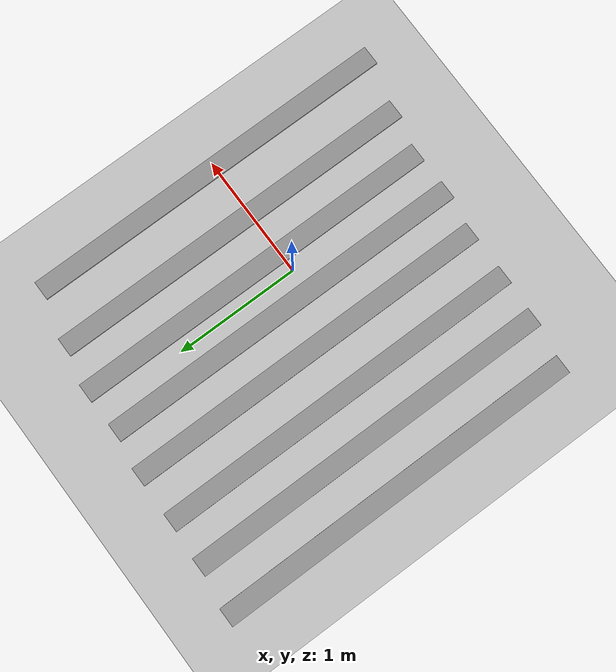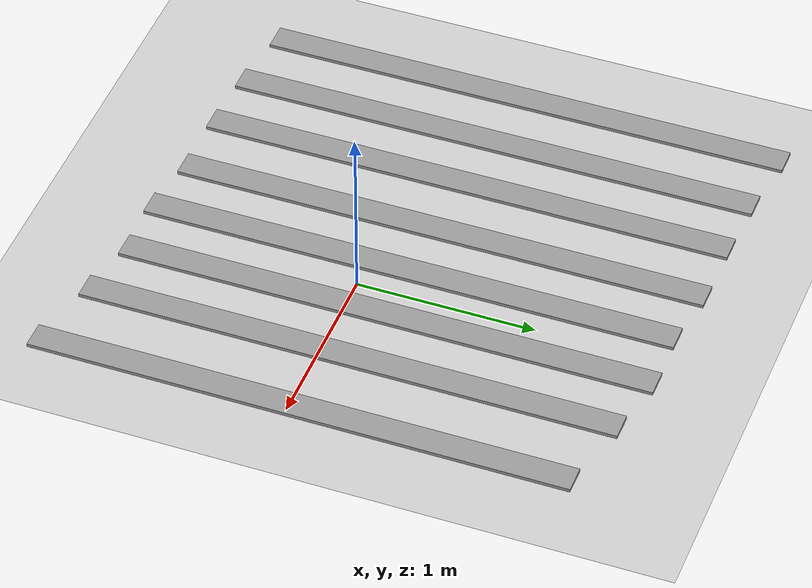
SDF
<sdf version="1.6">
 <world name="default">
  <light name="sun" type="directional">
   <pose>0 0 10 0 -0 0</pose>
   <diffuse>0.8 0.8 0.8 1</diffuse>
   <specular>0.2 0.2 0.2 1</specular>
   <attenuation>
    <range>1000</range>
    <constant>0.9</constant>
    <linear>0.01</linear>
    <quadratic>0.001</quadratic>
   </attenuation>
   <direction>-0.5 0.1 -0.9</direction>
  </light>
  <model name="ground_plane">
   <static>1</static>
   <link name="link">
    <collision name="collision">
     <geometry><plane><normal>0 0 1</normal><size>100 100</size></plane></geometry>
     <surface><friction><ode><mu>100</mu><mu2>50</mu2></ode></friction></surface>
    </collision>
    <visual name="visual">
     <cast_shadows>0</cast_shadows>
     <geometry><plane><normal>0 0 1</normal><size>100 100</size></plane></geometry>
     <material>
      <script><uri>file://media/materials/scripts/gazebo.material</uri><name>Gazebo/Grey</name></script>
     </material>
    </visual>
   </link>
  </model>
  <gravity>0 0 -9.8</gravity>
  <magnetic_field>6e-06 2.3e-05 -4.2e-05</magnetic_field>
  <atmosphere type="adiabatic"/>
  <physics name="default_physics" default="0" type="ode">
   <max_step_size>0.001</max_step_size>
   <real_time_factor>1</real_time_factor>
   <real_time_update_rate>1000</real_time_update_rate>
  </physics>
  <scene><ambient>0.4 0.4 0.4 1</ambient><background>0.7 0.7 0.7 1</background><shadows>1</shadows></scene>
  <audio><device>default</device></audio>
  <spherical_coordinates>
   <surface_model>EARTH_WGS84</surface_model>
   <latitude_deg>0</latitude_deg>
   <longitude_deg>0</longitude_deg>
   <elevation>0</elevation>
   <heading_deg>0</heading_deg>
  </spherical_coordinates>
  <model name="unit_box">
   <pose>-1.70044 0.345286 0.009892 0 6e-06 0</pose>
   <link name="link">
    <inertial>
     <mass>1</mass>
     <inertia>
      <ixx>0.166667</ixx>
      <ixy>0</ixy>
      <ixz>0</ixz>
      <iyy>0.166667</iyy>
      <iyz>0</iyz>
      <izz>0.166667</izz>
     </inertia>
    </inertial>
    <collision name="collision">
     <geometry><box><size>0.154508 2.98369 0.0197854</size></box></geometry>
    </collision>
    <visual name="visual">
     <geometry><box><size>0.154508 2.98369 0.0197854</size></box></geometry>
     <material>
      <script><name>Gazebo/Grey</name><uri>file://media/materials/scripts/gazebo.material</uri></script>
     </material>
    </visual>
   </link>
  </model>
  <model name="unit_box_clone">
   <pose>-1.30824 0.296436 0.009893 0 -4e-06 0</pose>
   <link name="link">
    <inertial>
     <mass>1</mass>
     <inertia>
      <ixx>0.166667</ixx>
      <ixy>0</ixy>
      <ixz>0</ixz>
      <iyy>0.166667</iyy>
      <iyz>0</iyz>
      <izz>0.166667</izz>
     </inertia>
    </inertial>
    <collision name="collision"><geometry><box><size>0.154508 2.98369 0.019785</size></box></geometry></collision>
    <visual name="visual">
     <geometry><box><size>0.154508 2.98369 0.019785</size></box></geometry>
     <material>
      <script><name>Gazebo/Grey</name><uri>file://media/materials/scripts/gazebo.material</uri></script>
     </material>
    </visual>
   </link>
  </model>
  <model name="unit_box_clone_0">
   <pose>-0.937732 0.277378 0.009893 0 -4e-06 0</pose>
   <link name="link">
    <inertial>
     <mass>1</mass>
     <inertia>
      <ixx>0.166667</ixx>
      <ixy>0</ixy>
      <ixz>0</ixz>
      <iyy>0.166667</iyy>
      <iyz>0</iyz>
      <izz>0.166667</izz>
     </inertia>
    </inertial>
    <collision name="collision"><geometry><box><size>0.154508 2.98369 0.019785</size></box></geometry></collision>
    <visual name="visual">
     <geometry><box><size>0.154508 2.98369 0.019785</size></box></geometry>
     <material>
      <script><name>Gazebo/Grey</name><uri>file://media/materials/scripts/gazebo.material</uri></script>
     </material>
    </visual>
   </link>
  </model>
  <model name="unit_box_clone_1">
   <pose>-0.544792 0.27231 0.009892 0 -6e-06 0</pose>
   <link name="link">
    <inertial>
     <mass>1</mass>
     <inertia>
      <ixx>0.166667</ixx>
      <ixy>0</ixy>
      <ixz>0</ixz>
      <iyy>0.166667</iyy>
      <iyz>0</iyz>
      <izz>0.166667</izz>
     </inertia>
    </inertial>
    <collision name="collision"><geometry><box><size>0.154508 2.98369 0.019785</size></box></geometry></collision>
    <visual name="visual">
     <geometry><box><size>0.154508 2.98369 0.019785</size></box></geometry>
     <material>
      <script><name>Gazebo/Grey</name><uri>file://media/materials/scripts/gazebo.material</uri></script>
     </material>
    </visual>
   </link>
  </model>
  <model name="unit_box_clone_2">
   <pose>-0.189666 0.224963 0.009893 0 -2e-06 0</pose>
   <link name="link">
    <inertial>
     <mass>1</mass>
     <inertia>
      <ixx>0.166667</ixx>
      <ixy>0</ixy>
      <ixz>0</ixz>
      <iyy>0.166667</iyy>
      <iyz>0</iyz>
      <izz>0.166667</izz>
     </inertia>
    </inertial>
    <collision name="collision"><geometry><box><size>0.154508 2.98369 0.019785</size></box></geometry></collision>
    <visual name="visual">
     <geometry><box><size>0.154508 2.98369 0.019785</size></box></geometry>
     <material>
      <script><name>Gazebo/Grey</name><uri>file://media/materials/scripts/gazebo.material</uri></script>
     </material>
    </visual>
   </link>
  </model>
  <model name="unit_box_clone_3">
   <pose>0.162408 0.229464 0.009893 -1e-06 4e-06 0</pose>
   <link name="link">
    <inertial>
     <mass>1</mass>
     <inertia>
      <ixx>0.166667</ixx>
      <ixy>0</ixy>
      <ixz>0</ixz>
      <iyy>0.166667</iyy>
      <iyz>0</iyz>
      <izz>0.166667</izz>
     </inertia>
    </inertial>
    <collision name="collision"><geometry><box><size>0.154508 2.98369 0.019785</size></box></geometry></collision>
    <visual name="visual">
     <geometry><box><size>0.154508 2.98369 0.019785</size></box></geometry>
     <material>
      <script><name>Gazebo/Grey</name><uri>file://media/materials/scripts/gazebo.material</uri></script>
     </material>
    </visual>
   </link>
  </model>
  <model name="unit_box_clone_4">
   <pose>0.523628 0.159541 0.009889 3e-06 -6e-06 0</pose>
   <link name="link">
    <inertial>
     <mass>1</mass>
     <inertia>
      <ixx>0.166667</ixx>
      <ixy>0</ixy>
      <ixz>0</ixz>
      <iyy>0.166667</iyy>
      <iyz>0</iyz>
      <izz>0.166667</izz>
     </inertia>
    </inertial>
    <collision name="collision"><geometry><box><size>0.154508 2.98369 0.019785</size></box></geometry></collision>
    <visual name="visual">
     <geometry><box><size>0.154508 2.98369 0.019785</size></box></geometry>
     <material>
      <script><name>Gazebo/Grey</name><uri>file://media/materials/scripts/gazebo.material</uri></script>
     </material>
    </visual>
   </link>
  </model>
  <model name="unit_box_clone_5">
   <pose>0.962831 0.058804 0.009893 0 6e-06 0</pose>
   <link name="link">
    <inertial>
     <mass>1</mass>
     <inertia>
      <ixx>0.166667</ixx>
      <ixy>0</ixy>
      <ixz>0</ixz>
      <iyy>0.166667</iyy>
      <iyz>0</iyz>
      <izz>0.166667</izz>
     </inertia>
    </inertial>
    <collision name="collision"><geometry><box><size>0.154508 2.98369 0.019785</size></box></geometry></collision>
    <visual name="visual">
     <geometry><box><size>0.154508 2.98369 0.019785</size></box></geometry>
     <material>
      <script><name>Gazebo/Grey</name><uri>file://media/materials/scripts/gazebo.material</uri></script>
     </material>
    </visual>
   </link>
  </model>
 </world>
</sdf>
